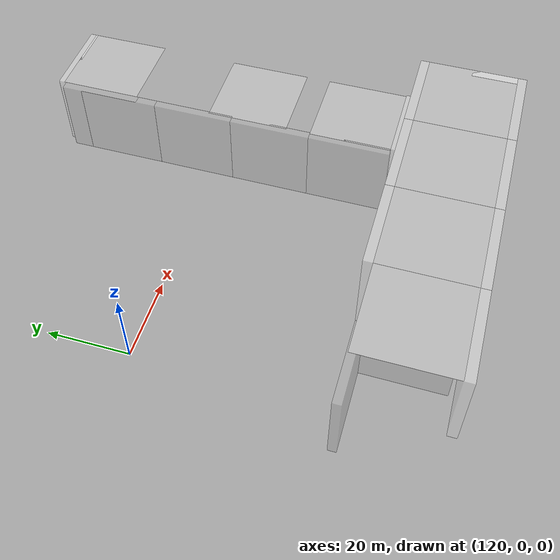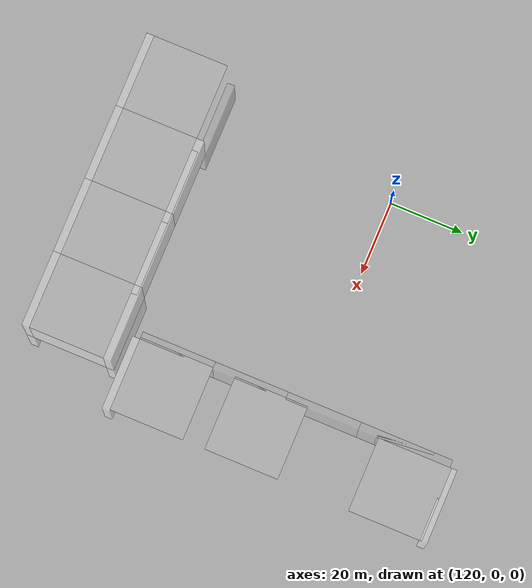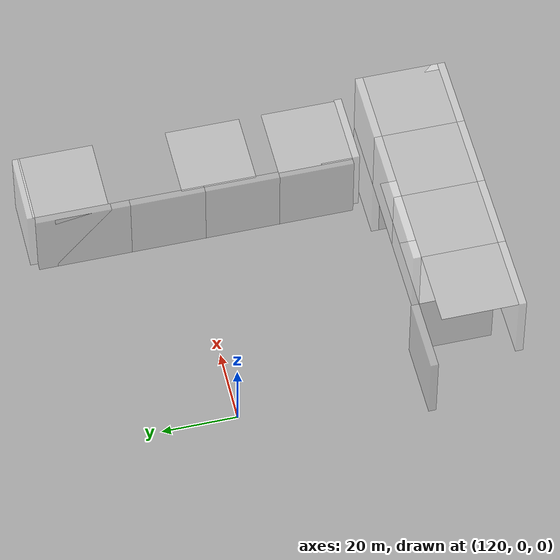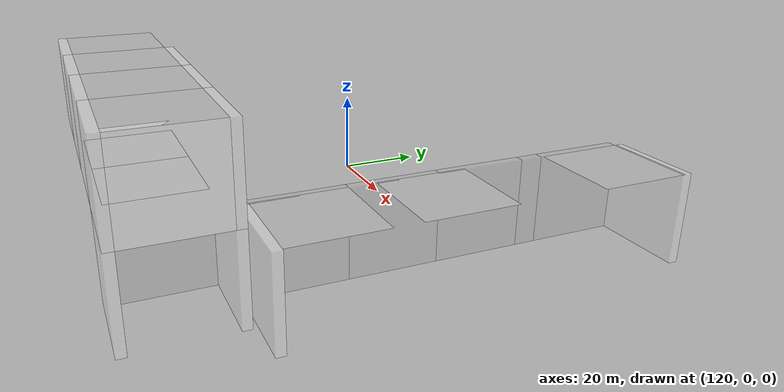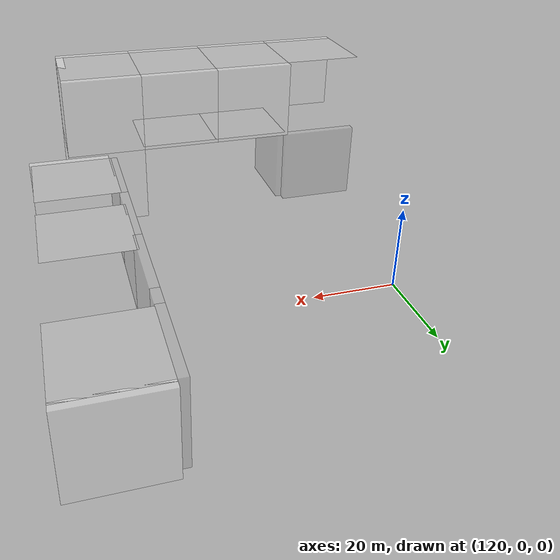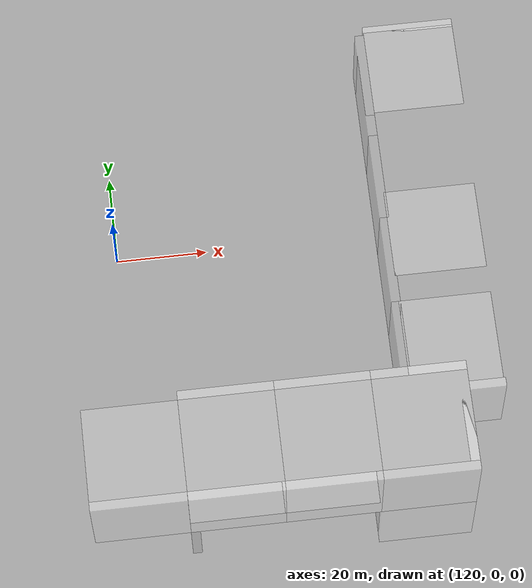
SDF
<sdf version="1.7">
 <model name="race2">
  <link name="link_clone_0_clone_4_clone">
   <pose>131 -60 10 -1.5708 4e-06 1.5708</pose>
   <visual name="visual">
    <transparency>0.6</transparency>
    <geometry><box><size>20 20 2</size></box></geometry>
    <material>
     <script>
      <uri>model://new_wall/materials/scripts</uri>
      <uri>model://new_wall/materials/textures/</uri>
      <name>NewWall/Image</name>
     </script>
     <shader type="pixel"/>
    </material>
   </visual>
   <collision name="collision">
    <geometry><box><size>20 20 2</size></box></geometry>
    <surface>
     <friction>
      <ode><mu>1</mu><mu2>1</mu2><fdir1>0 0 0</fdir1><slip1>0</slip1><slip2>0</slip2></ode>
      <torsional>
       <coefficient>1</coefficient>
       <patch_radius>0</patch_radius>
       <surface_radius>0</surface_radius>
       <use_patch_radius>1</use_patch_radius>
       <ode><slip>0</slip></ode>
      </torsional>
     </friction>
     <bounce><restitution_coefficient>0</restitution_coefficient><threshold>1e+06</threshold></bounce>
     <contact>
      <collide_without_contact>0</collide_without_contact>
      <collide_without_contact_bitmask>1</collide_without_contact_bitmask>
      <collide_bitmask>1</collide_bitmask>
      <ode>
       <soft_cfm>0</soft_cfm>
       <soft_erp>0.2</soft_erp>
       <kp>1e+13</kp>
       <kd>1</kd>
       <max_vel>0.01</max_vel>
       <min_depth>0</min_depth>
      </ode>
      <bullet>
       <split_impulse>1</split_impulse>
       <split_impulse_penetration_threshold>-0.01</split_impulse_penetration_threshold>
       <soft_cfm>0</soft_cfm>
       <soft_erp>0.2</soft_erp>
       <kp>1e+13</kp>
       <kd>1</kd>
      </bullet>
     </contact>
    </surface>
   </collision>
  </link>
  <link name="link_clone_0_clone_4_clone_clone">
   <pose>171 -60 10 -1.5708 4e-06 1.5708</pose>
   <visual name="visual">
    <transparency>0.6</transparency>
    <geometry><box><size>20 20 2</size></box></geometry>
    <material>
     <script>
      <uri>model://new_wall/materials/scripts</uri>
      <uri>model://new_wall/materials/textures/</uri>
      <name>NewWall/Image</name>
     </script>
     <shader type="pixel"/>
    </material>
   </visual>
   <collision name="collision">
    <geometry><box><size>20 20 2</size></box></geometry>
    <surface>
     <friction>
      <ode><mu>1</mu><mu2>1</mu2><fdir1>0 0 0</fdir1><slip1>0</slip1><slip2>0</slip2></ode>
      <torsional>
       <coefficient>1</coefficient>
       <patch_radius>0</patch_radius>
       <surface_radius>0</surface_radius>
       <use_patch_radius>1</use_patch_radius>
       <ode><slip>0</slip></ode>
      </torsional>
     </friction>
     <bounce><restitution_coefficient>0</restitution_coefficient><threshold>1e+06</threshold></bounce>
     <contact>
      <collide_without_contact>0</collide_without_contact>
      <collide_without_contact_bitmask>1</collide_without_contact_bitmask>
      <collide_bitmask>1</collide_bitmask>
      <ode>
       <soft_cfm>0</soft_cfm>
       <soft_erp>0.2</soft_erp>
       <kp>1e+13</kp>
       <kd>1</kd>
       <max_vel>0.01</max_vel>
       <min_depth>0</min_depth>
      </ode>
      <bullet>
       <split_impulse>1</split_impulse>
       <split_impulse_penetration_threshold>-0.01</split_impulse_penetration_threshold>
       <soft_cfm>0</soft_cfm>
       <soft_erp>0.2</soft_erp>
       <kp>1e+13</kp>
       <kd>1</kd>
      </bullet>
     </contact>
    </surface>
   </collision>
  </link>
  <link name="link_clone_0_clone_4_clone_clone_0_clone_clone_2">
   <pose>179 -35 10 -1.5708 4e-06 1.5708</pose>
   <visual name="visual">
    <transparency>0.6</transparency>
    <geometry><box><size>20 20 2</size></box></geometry>
    <material>
     <script>
      <uri>model://new_wall/materials/scripts</uri>
      <uri>model://new_wall/materials/textures/</uri>
      <name>NewWall/Image</name>
     </script>
     <shader type="pixel"/>
    </material>
   </visual>
   <collision name="collision">
    <geometry><box><size>20 20 2</size></box></geometry>
    <surface>
     <friction>
      <ode><mu>1</mu><mu2>1</mu2><fdir1>0 0 0</fdir1><slip1>0</slip1><slip2>0</slip2></ode>
      <torsional>
       <coefficient>1</coefficient>
       <patch_radius>0</patch_radius>
       <surface_radius>0</surface_radius>
       <use_patch_radius>1</use_patch_radius>
       <ode><slip>0</slip></ode>
      </torsional>
     </friction>
     <bounce><restitution_coefficient>0</restitution_coefficient><threshold>1e+06</threshold></bounce>
     <contact>
      <collide_without_contact>0</collide_without_contact>
      <collide_without_contact_bitmask>1</collide_without_contact_bitmask>
      <collide_bitmask>1</collide_bitmask>
      <ode>
       <soft_cfm>0</soft_cfm>
       <soft_erp>0.2</soft_erp>
       <kp>1e+13</kp>
       <kd>1</kd>
       <max_vel>0.01</max_vel>
       <min_depth>0</min_depth>
      </ode>
      <bullet>
       <split_impulse>1</split_impulse>
       <split_impulse_penetration_threshold>-0.01</split_impulse_penetration_threshold>
       <soft_cfm>0</soft_cfm>
       <soft_erp>0.2</soft_erp>
       <kp>1e+13</kp>
       <kd>1</kd>
      </bullet>
     </contact>
    </surface>
   </collision>
  </link>
  <link name="link_clone_0_clone_4_clone_clone_0_clone_clone_3">
   <pose>179 -15 10 -1.5708 4e-06 1.5708</pose>
   <visual name="visual">
    <transparency>0.6</transparency>
    <geometry><box><size>20 20 2</size></box></geometry>
    <material>
     <script>
      <uri>model://new_wall/materials/scripts</uri>
      <uri>model://new_wall/materials/textures/</uri>
      <name>NewWall/Image</name>
     </script>
     <shader type="pixel"/>
    </material>
   </visual>
   <collision name="collision">
    <geometry><box><size>20 20 2</size></box></geometry>
    <surface>
     <friction>
      <ode><mu>1</mu><mu2>1</mu2><fdir1>0 0 0</fdir1><slip1>0</slip1><slip2>0</slip2></ode>
      <torsional>
       <coefficient>1</coefficient>
       <patch_radius>0</patch_radius>
       <surface_radius>0</surface_radius>
       <use_patch_radius>1</use_patch_radius>
       <ode><slip>0</slip></ode>
      </torsional>
     </friction>
     <bounce><restitution_coefficient>0</restitution_coefficient><threshold>1e+06</threshold></bounce>
     <contact>
      <collide_without_contact>0</collide_without_contact>
      <collide_without_contact_bitmask>1</collide_without_contact_bitmask>
      <collide_bitmask>1</collide_bitmask>
      <ode>
       <soft_cfm>0</soft_cfm>
       <soft_erp>0.2</soft_erp>
       <kp>1e+13</kp>
       <kd>1</kd>
       <max_vel>0.01</max_vel>
       <min_depth>0</min_depth>
      </ode>
      <bullet>
       <split_impulse>1</split_impulse>
       <split_impulse_penetration_threshold>-0.01</split_impulse_penetration_threshold>
       <soft_cfm>0</soft_cfm>
       <soft_erp>0.2</soft_erp>
       <kp>1e+13</kp>
       <kd>1</kd>
      </bullet>
     </contact>
    </surface>
   </collision>
  </link>
  <link name="link_clone_0_clone_4_clone_clone_0_clone_clone_4">
   <pose>179 5 10 -1.5708 4e-06 1.5708</pose>
   <visual name="visual">
    <transparency>0.6</transparency>
    <geometry><box><size>20 20 2</size></box></geometry>
    <material>
     <script>
      <uri>model://new_wall/materials/scripts</uri>
      <uri>model://new_wall/materials/textures/</uri>
      <name>NewWall/Image</name>
     </script>
     <shader type="pixel"/>
    </material>
   </visual>
   <collision name="collision">
    <geometry><box><size>20 20 2</size></box></geometry>
    <surface>
     <friction>
      <ode><mu>1</mu><mu2>1</mu2><fdir1>0 0 0</fdir1><slip1>0</slip1><slip2>0</slip2></ode>
      <torsional>
       <coefficient>1</coefficient>
       <patch_radius>0</patch_radius>
       <surface_radius>0</surface_radius>
       <use_patch_radius>1</use_patch_radius>
       <ode><slip>0</slip></ode>
      </torsional>
     </friction>
     <bounce><restitution_coefficient>0</restitution_coefficient><threshold>1e+06</threshold></bounce>
     <contact>
      <collide_without_contact>0</collide_without_contact>
      <collide_without_contact_bitmask>1</collide_without_contact_bitmask>
      <collide_bitmask>1</collide_bitmask>
      <ode>
       <soft_cfm>0</soft_cfm>
       <soft_erp>0.2</soft_erp>
       <kp>1e+13</kp>
       <kd>1</kd>
       <max_vel>0.01</max_vel>
       <min_depth>0</min_depth>
      </ode>
      <bullet>
       <split_impulse>1</split_impulse>
       <split_impulse_penetration_threshold>-0.01</split_impulse_penetration_threshold>
       <soft_cfm>0</soft_cfm>
       <soft_erp>0.2</soft_erp>
       <kp>1e+13</kp>
       <kd>1</kd>
      </bullet>
     </contact>
    </surface>
   </collision>
  </link>
  <link name="link_clone_0_clone_4_clone_clone_0_clone_clone_5">
   <pose>179 25 10 -1.5708 4e-06 1.5708</pose>
   <visual name="visual">
    <transparency>0.6</transparency>
    <geometry><box><size>20 20 2</size></box></geometry>
    <material>
     <script>
      <uri>model://new_wall/materials/scripts</uri>
      <uri>model://new_wall/materials/textures/</uri>
      <name>NewWall/Image</name>
     </script>
     <shader type="pixel"/>
    </material>
   </visual>
   <collision name="collision">
    <geometry><box><size>20 20 2</size></box></geometry>
    <surface>
     <friction>
      <ode><mu>1</mu><mu2>1</mu2><fdir1>0 0 0</fdir1><slip1>0</slip1><slip2>0</slip2></ode>
      <torsional>
       <coefficient>1</coefficient>
       <patch_radius>0</patch_radius>
       <surface_radius>0</surface_radius>
       <use_patch_radius>1</use_patch_radius>
       <ode><slip>0</slip></ode>
      </torsional>
     </friction>
     <bounce><restitution_coefficient>0</restitution_coefficient><threshold>1e+06</threshold></bounce>
     <contact>
      <collide_without_contact>0</collide_without_contact>
      <collide_without_contact_bitmask>1</collide_without_contact_bitmask>
      <collide_bitmask>1</collide_bitmask>
      <ode>
       <soft_cfm>0</soft_cfm>
       <soft_erp>0.2</soft_erp>
       <kp>1e+13</kp>
       <kd>1</kd>
       <max_vel>0.01</max_vel>
       <min_depth>0</min_depth>
      </ode>
      <bullet>
       <split_impulse>1</split_impulse>
       <split_impulse_penetration_threshold>-0.01</split_impulse_penetration_threshold>
       <soft_cfm>0</soft_cfm>
       <soft_erp>0.2</soft_erp>
       <kp>1e+13</kp>
       <kd>1</kd>
      </bullet>
     </contact>
    </surface>
   </collision>
  </link>
  <link name="link_clone_0_clone_4_clone_clone_0_clone_clone_5_clone">
   <pose>179 30 10 -1.5708 4e-06 1.5708</pose>
   <visual name="visual">
    <transparency>0.6</transparency>
    <geometry><box><size>20 20 2</size></box></geometry>
    <material>
     <script>
      <uri>model://new_wall/materials/scripts</uri>
      <uri>model://new_wall/materials/textures/</uri>
      <name>NewWall/Image</name>
     </script>
     <shader type="pixel"/>
    </material>
   </visual>
   <collision name="collision">
    <geometry><box><size>20 20 2</size></box></geometry>
    <surface>
     <friction>
      <ode><mu>1</mu><mu2>1</mu2><fdir1>0 0 0</fdir1><slip1>0</slip1><slip2>0</slip2></ode>
      <torsional>
       <coefficient>1</coefficient>
       <patch_radius>0</patch_radius>
       <surface_radius>0</surface_radius>
       <use_patch_radius>1</use_patch_radius>
       <ode><slip>0</slip></ode>
      </torsional>
     </friction>
     <bounce><restitution_coefficient>0</restitution_coefficient><threshold>1e+06</threshold></bounce>
     <contact>
      <collide_without_contact>0</collide_without_contact>
      <collide_without_contact_bitmask>1</collide_without_contact_bitmask>
      <collide_bitmask>1</collide_bitmask>
      <ode>
       <soft_cfm>0</soft_cfm>
       <soft_erp>0.2</soft_erp>
       <kp>1e+13</kp>
       <kd>1</kd>
       <max_vel>0.01</max_vel>
       <min_depth>0</min_depth>
      </ode>
      <bullet>
       <split_impulse>1</split_impulse>
       <split_impulse_penetration_threshold>-0.01</split_impulse_penetration_threshold>
       <soft_cfm>0</soft_cfm>
       <soft_erp>0.2</soft_erp>
       <kp>1e+13</kp>
       <kd>1</kd>
      </bullet>
     </contact>
    </surface>
   </collision>
  </link>
  <link name="link_clone_2_clone_3_clone">
   <pose>120.433 -49 10 -1.5708 0 0</pose>
   <inertial>
    <mass>1</mass>
    <inertia><ixx>1</ixx><ixy>0</ixy><ixz>0</ixz><iyy>1</iyy><iyz>0</iyz><izz>1</izz></inertia>
   </inertial>
   <visual name="visual">
    <transparency>0.6</transparency>
    <geometry><box><size>20 20 2</size></box></geometry>
    <material>
     <script>
      <uri>model://new_wall/materials/scripts</uri>
      <uri>model://new_wall/materials/textures/</uri>
      <name>NewWall/Image</name>
     </script>
     <shader type="pixel"><normal_map>__default__</normal_map></shader>
    </material>
   </visual>
   <collision name="collision">
    <geometry><box><size>20 20 2</size></box></geometry>
    <surface>
     <friction>
      <ode><mu>1</mu><mu2>1</mu2><fdir1>0 0 0</fdir1><slip1>0</slip1><slip2>0</slip2></ode>
      <torsional>
       <coefficient>1</coefficient>
       <patch_radius>0</patch_radius>
       <surface_radius>0</surface_radius>
       <use_patch_radius>1</use_patch_radius>
       <ode><slip>0</slip></ode>
      </torsional>
     </friction>
     <bounce><restitution_coefficient>0</restitution_coefficient><threshold>1e+06</threshold></bounce>
     <contact>
      <collide_without_contact>0</collide_without_contact>
      <collide_without_contact_bitmask>1</collide_without_contact_bitmask>
      <collide_bitmask>1</collide_bitmask>
      <ode>
       <soft_cfm>0</soft_cfm>
       <soft_erp>0.2</soft_erp>
       <kp>1e+13</kp>
       <kd>1</kd>
       <max_vel>0.01</max_vel>
       <min_depth>0</min_depth>
      </ode>
      <bullet>
       <split_impulse>1</split_impulse>
       <split_impulse_penetration_threshold>-0.01</split_impulse_penetration_threshold>
       <soft_cfm>0</soft_cfm>
       <soft_erp>0.2</soft_erp>
       <kp>1e+13</kp>
       <kd>1</kd>
      </bullet>
     </contact>
    </surface>
   </collision>
  </link>
  <link name="link_clone_2_clone_3_clone_0">
   <pose>120 -71 30 -1.5708 0 0</pose>
   <inertial>
    <mass>1</mass>
    <inertia><ixx>1</ixx><ixy>0</ixy><ixz>0</ixz><iyy>1</iyy><iyz>0</iyz><izz>1</izz></inertia>
   </inertial>
   <visual name="visual">
    <transparency>0.6</transparency>
    <geometry><box><size>20 20 2</size></box></geometry>
    <material>
     <script>
      <uri>model://new_wall/materials/scripts</uri>
      <uri>model://new_wall/materials/textures/</uri>
      <name>NewWall/Image</name>
     </script>
     <shader type="pixel"><normal_map>__default__</normal_map></shader>
     <ambient>1 1 1 1</ambient>
     <diffuse>1 1 1 1</diffuse>
     <specular>0.03 0.03 0.03 1</specular>
     <emissive>0 0 0 1</emissive>
    </material>
   </visual>
   <collision name="collision">
    <geometry><box><size>20 20 2</size></box></geometry>
    <surface>
     <friction>
      <ode><mu>1</mu><mu2>1</mu2><fdir1>0 0 0</fdir1><slip1>0</slip1><slip2>0</slip2></ode>
      <torsional>
       <coefficient>1</coefficient>
       <patch_radius>0</patch_radius>
       <surface_radius>0</surface_radius>
       <use_patch_radius>1</use_patch_radius>
       <ode><slip>0</slip></ode>
      </torsional>
     </friction>
     <bounce><restitution_coefficient>0</restitution_coefficient><threshold>1e+06</threshold></bounce>
     <contact>
      <collide_without_contact>0</collide_without_contact>
      <collide_without_contact_bitmask>1</collide_without_contact_bitmask>
      <collide_bitmask>1</collide_bitmask>
      <ode>
       <soft_cfm>0</soft_cfm>
       <soft_erp>0.2</soft_erp>
       <kp>1e+13</kp>
       <kd>1</kd>
       <max_vel>0.01</max_vel>
       <min_depth>0</min_depth>
      </ode>
      <bullet>
       <split_impulse>1</split_impulse>
       <split_impulse_penetration_threshold>-0.01</split_impulse_penetration_threshold>
       <soft_cfm>0</soft_cfm>
       <soft_erp>0.2</soft_erp>
       <kp>1e+13</kp>
       <kd>1</kd>
      </bullet>
     </contact>
    </surface>
   </collision>
  </link>
  <link name="link_clone_2_clone_3_clone_0_clone_clone">
   <pose>189 -60 30 -1.5708 -4e-06 -1.5708</pose>
   <inertial>
    <mass>1</mass>
    <inertia><ixx>1</ixx><ixy>0</ixy><ixz>0</ixz><iyy>1</iyy><iyz>0</iyz><izz>1</izz></inertia>
   </inertial>
   <visual name="visual">
    <transparency>0.6</transparency>
    <geometry><box><size>20 20 2</size></box></geometry>
    <material>
     <script>
      <uri>model://new_wall/materials/scripts</uri>
      <uri>model://new_wall/materials/textures/</uri>
      <name>NewWall/Image</name>
     </script>
     <shader type="pixel"><normal_map>__default__</normal_map></shader>
     <ambient>1 1 1 1</ambient>
     <diffuse>1 1 1 1</diffuse>
     <specular>0.03 0.03 0.03 1</specular>
     <emissive>0 0 0 1</emissive>
    </material>
   </visual>
   <collision name="collision">
    <geometry><box><size>20 20 2</size></box></geometry>
    <surface>
     <friction>
      <ode><mu>1</mu><mu2>1</mu2><fdir1>0 0 0</fdir1><slip1>0</slip1><slip2>0</slip2></ode>
      <torsional>
       <coefficient>1</coefficient>
       <patch_radius>0</patch_radius>
       <surface_radius>0</surface_radius>
       <use_patch_radius>1</use_patch_radius>
       <ode><slip>0</slip></ode>
      </torsional>
     </friction>
     <bounce><restitution_coefficient>0</restitution_coefficient><threshold>1e+06</threshold></bounce>
     <contact>
      <collide_without_contact>0</collide_without_contact>
      <collide_without_contact_bitmask>1</collide_without_contact_bitmask>
      <collide_bitmask>1</collide_bitmask>
      <ode>
       <soft_cfm>0</soft_cfm>
       <soft_erp>0.2</soft_erp>
       <kp>1e+13</kp>
       <kd>1</kd>
       <max_vel>0.01</max_vel>
       <min_depth>0</min_depth>
      </ode>
      <bullet>
       <split_impulse>1</split_impulse>
       <split_impulse_penetration_threshold>-0.01</split_impulse_penetration_threshold>
       <soft_cfm>0</soft_cfm>
       <soft_erp>0.2</soft_erp>
       <kp>1e+13</kp>
       <kd>1</kd>
      </bullet>
     </contact>
    </surface>
   </collision>
  </link>
  <link name="link_clone_2_clone_3_clone_1">
   <pose>140 -49 30 -1.5708 0 0</pose>
   <inertial>
    <mass>1</mass>
    <inertia><ixx>1</ixx><ixy>0</ixy><ixz>0</ixz><iyy>1</iyy><iyz>0</iyz><izz>1</izz></inertia>
   </inertial>
   <visual name="visual">
    <transparency>0.6</transparency>
    <geometry><box><size>20 20 2</size></box></geometry>
    <material>
     <script>
      <uri>model://new_wall/materials/scripts</uri>
      <uri>model://new_wall/materials/textures/</uri>
      <name>NewWall/Image</name>
     </script>
     <shader type="pixel"><normal_map>__default__</normal_map></shader>
     <ambient>1 1 1 1</ambient>
     <diffuse>1 1 1 1</diffuse>
     <specular>0.03 0.03 0.03 1</specular>
     <emissive>0 0 0 1</emissive>
    </material>
   </visual>
   <collision name="collision">
    <geometry><box><size>20 20 2</size></box></geometry>
    <surface>
     <friction>
      <ode><mu>1</mu><mu2>1</mu2><fdir1>0 0 0</fdir1><slip1>0</slip1><slip2>0</slip2></ode>
      <torsional>
       <coefficient>1</coefficient>
       <patch_radius>0</patch_radius>
       <surface_radius>0</surface_radius>
       <use_patch_radius>1</use_patch_radius>
       <ode><slip>0</slip></ode>
      </torsional>
     </friction>
     <bounce><restitution_coefficient>0</restitution_coefficient><threshold>1e+06</threshold></bounce>
     <contact>
      <collide_without_contact>0</collide_without_contact>
      <collide_without_contact_bitmask>1</collide_without_contact_bitmask>
      <collide_bitmask>1</collide_bitmask>
      <ode>
       <soft_cfm>0</soft_cfm>
       <soft_erp>0.2</soft_erp>
       <kp>1e+13</kp>
       <kd>1</kd>
       <max_vel>0.01</max_vel>
       <min_depth>0</min_depth>
      </ode>
      <bullet>
       <split_impulse>1</split_impulse>
       <split_impulse_penetration_threshold>-0.01</split_impulse_penetration_threshold>
       <soft_cfm>0</soft_cfm>
       <soft_erp>0.2</soft_erp>
       <kp>1e+13</kp>
       <kd>1</kd>
      </bullet>
     </contact>
    </surface>
   </collision>
  </link>
  <link name="link_clone_2_clone_3_clone_2">
   <pose>140 -71 30 -1.5708 0 0</pose>
   <inertial>
    <mass>1</mass>
    <inertia><ixx>1</ixx><ixy>0</ixy><ixz>0</ixz><iyy>1</iyy><iyz>0</iyz><izz>1</izz></inertia>
   </inertial>
   <visual name="visual">
    <transparency>0.6</transparency>
    <geometry><box><size>20 20 2</size></box></geometry>
    <material>
     <script>
      <uri>model://new_wall/materials/scripts</uri>
      <uri>model://new_wall/materials/textures/</uri>
      <name>NewWall/Image</name>
     </script>
     <shader type="pixel"><normal_map>__default__</normal_map></shader>
     <ambient>1 1 1 1</ambient>
     <diffuse>1 1 1 1</diffuse>
     <specular>0.03 0.03 0.03 1</specular>
     <emissive>0 0 0 1</emissive>
    </material>
   </visual>
   <collision name="collision">
    <geometry><box><size>20 20 2</size></box></geometry>
    <surface>
     <friction>
      <ode><mu>1</mu><mu2>1</mu2><fdir1>0 0 0</fdir1><slip1>0</slip1><slip2>0</slip2></ode>
      <torsional>
       <coefficient>1</coefficient>
       <patch_radius>0</patch_radius>
       <surface_radius>0</surface_radius>
       <use_patch_radius>1</use_patch_radius>
       <ode><slip>0</slip></ode>
      </torsional>
     </friction>
     <bounce><restitution_coefficient>0</restitution_coefficient><threshold>1e+06</threshold></bounce>
     <contact>
      <collide_without_contact>0</collide_without_contact>
      <collide_without_contact_bitmask>1</collide_without_contact_bitmask>
      <collide_bitmask>1</collide_bitmask>
      <ode>
       <soft_cfm>0</soft_cfm>
       <soft_erp>0.2</soft_erp>
       <kp>1e+13</kp>
       <kd>1</kd>
       <max_vel>0.01</max_vel>
       <min_depth>0</min_depth>
      </ode>
      <bullet>
       <split_impulse>1</split_impulse>
       <split_impulse_penetration_threshold>-0.01</split_impulse_penetration_threshold>
       <soft_cfm>0</soft_cfm>
       <soft_erp>0.2</soft_erp>
       <kp>1e+13</kp>
       <kd>1</kd>
      </bullet>
     </contact>
    </surface>
   </collision>
  </link>
  <link name="link_clone_2_clone_3_clone_3">
   <pose>160 -49 30 -1.5708 0 0</pose>
   <inertial>
    <mass>1</mass>
    <inertia><ixx>1</ixx><ixy>0</ixy><ixz>0</ixz><iyy>1</iyy><iyz>0</iyz><izz>1</izz></inertia>
   </inertial>
   <visual name="visual">
    <transparency>0.6</transparency>
    <geometry><box><size>20 20 2</size></box></geometry>
    <material>
     <script>
      <uri>model://new_wall/materials/scripts</uri>
      <uri>model://new_wall/materials/textures/</uri>
      <name>NewWall/Image</name>
     </script>
     <shader type="pixel"><normal_map>__default__</normal_map></shader>
     <ambient>1 1 1 1</ambient>
     <diffuse>1 1 1 1</diffuse>
     <specular>0.03 0.03 0.03 1</specular>
     <emissive>0 0 0 1</emissive>
    </material>
   </visual>
   <collision name="collision">
    <geometry><box><size>20 20 2</size></box></geometry>
    <surface>
     <friction>
      <ode><mu>1</mu><mu2>1</mu2><fdir1>0 0 0</fdir1><slip1>0</slip1><slip2>0</slip2></ode>
      <torsional>
       <coefficient>1</coefficient>
       <patch_radius>0</patch_radius>
       <surface_radius>0</surface_radius>
       <use_patch_radius>1</use_patch_radius>
       <ode><slip>0</slip></ode>
      </torsional>
     </friction>
     <bounce><restitution_coefficient>0</restitution_coefficient><threshold>1e+06</threshold></bounce>
     <contact>
      <collide_without_contact>0</collide_without_contact>
      <collide_without_contact_bitmask>1</collide_without_contact_bitmask>
      <collide_bitmask>1</collide_bitmask>
      <ode>
       <soft_cfm>0</soft_cfm>
       <soft_erp>0.2</soft_erp>
       <kp>1e+13</kp>
       <kd>1</kd>
       <max_vel>0.01</max_vel>
       <min_depth>0</min_depth>
      </ode>
      <bullet>
       <split_impulse>1</split_impulse>
       <split_impulse_penetration_threshold>-0.01</split_impulse_penetration_threshold>
       <soft_cfm>0</soft_cfm>
       <soft_erp>0.2</soft_erp>
       <kp>1e+13</kp>
       <kd>1</kd>
      </bullet>
     </contact>
    </surface>
   </collision>
  </link>
  <link name="link_clone_2_clone_3_clone_4">
   <pose>160 -71 30 -1.5708 0 0</pose>
   <inertial>
    <mass>1</mass>
    <inertia><ixx>1</ixx><ixy>0</ixy><ixz>0</ixz><iyy>1</iyy><iyz>0</iyz><izz>1</izz></inertia>
   </inertial>
   <visual name="visual">
    <transparency>0.6</transparency>
    <geometry><box><size>20 20 2</size></box></geometry>
    <material>
     <script>
      <uri>model://new_wall/materials/scripts</uri>
      <uri>model://new_wall/materials/textures/</uri>
      <name>NewWall/Image</name>
     </script>
     <shader type="pixel"><normal_map>__default__</normal_map></shader>
     <ambient>1 1 1 1</ambient>
     <diffuse>1 1 1 1</diffuse>
     <specular>0.03 0.03 0.03 1</specular>
     <emissive>0 0 0 1</emissive>
    </material>
   </visual>
   <collision name="collision">
    <geometry><box><size>20 20 2</size></box></geometry>
    <surface>
     <friction>
      <ode><mu>1</mu><mu2>1</mu2><fdir1>0 0 0</fdir1><slip1>0</slip1><slip2>0</slip2></ode>
      <torsional>
       <coefficient>1</coefficient>
       <patch_radius>0</patch_radius>
       <surface_radius>0</surface_radius>
       <use_patch_radius>1</use_patch_radius>
       <ode><slip>0</slip></ode>
      </torsional>
     </friction>
     <bounce><restitution_coefficient>0</restitution_coefficient><threshold>1e+06</threshold></bounce>
     <contact>
      <collide_without_contact>0</collide_without_contact>
      <collide_without_contact_bitmask>1</collide_without_contact_bitmask>
      <collide_bitmask>1</collide_bitmask>
      <ode>
       <soft_cfm>0</soft_cfm>
       <soft_erp>0.2</soft_erp>
       <kp>1e+13</kp>
       <kd>1</kd>
       <max_vel>0.01</max_vel>
       <min_depth>0</min_depth>
      </ode>
      <bullet>
       <split_impulse>1</split_impulse>
       <split_impulse_penetration_threshold>-0.01</split_impulse_penetration_threshold>
       <soft_cfm>0</soft_cfm>
       <soft_erp>0.2</soft_erp>
       <kp>1e+13</kp>
       <kd>1</kd>
      </bullet>
     </contact>
    </surface>
   </collision>
  </link>
  <link name="link_clone_2_clone_3_clone_5">
   <pose>180 -49 30 -1.5708 0 0</pose>
   <inertial>
    <mass>1</mass>
    <inertia><ixx>1</ixx><ixy>0</ixy><ixz>0</ixz><iyy>1</iyy><iyz>0</iyz><izz>1</izz></inertia>
   </inertial>
   <visual name="visual">
    <transparency>0.6</transparency>
    <geometry><box><size>20 20 2</size></box></geometry>
    <material>
     <script>
      <uri>model://new_wall/materials/scripts</uri>
      <uri>model://new_wall/materials/textures/</uri>
      <name>NewWall/Image</name>
     </script>
     <shader type="pixel"><normal_map>__default__</normal_map></shader>
     <ambient>1 1 1 1</ambient>
     <diffuse>1 1 1 1</diffuse>
     <specular>0.03 0.03 0.03 1</specular>
     <emissive>0 0 0 1</emissive>
    </material>
   </visual>
   <collision name="collision">
    <geometry><box><size>20 20 2</size></box></geometry>
    <surface>
     <friction>
      <ode><mu>1</mu><mu2>1</mu2><fdir1>0 0 0</fdir1><slip1>0</slip1><slip2>0</slip2></ode>
      <torsional>
       <coefficient>1</coefficient>
       <patch_radius>0</patch_radius>
       <surface_radius>0</surface_radius>
       <use_patch_radius>1</use_patch_radius>
       <ode><slip>0</slip></ode>
      </torsional>
     </friction>
     <bounce><restitution_coefficient>0</restitution_coefficient><threshold>1e+06</threshold></bounce>
     <contact>
      <collide_without_contact>0</collide_without_contact>
      <collide_without_contact_bitmask>1</collide_without_contact_bitmask>
      <collide_bitmask>1</collide_bitmask>
      <ode>
       <soft_cfm>0</soft_cfm>
       <soft_erp>0.2</soft_erp>
       <kp>1e+13</kp>
       <kd>1</kd>
       <max_vel>0.01</max_vel>
       <min_depth>0</min_depth>
      </ode>
      <bullet>
       <split_impulse>1</split_impulse>
       <split_impulse_penetration_threshold>-0.01</split_impulse_penetration_threshold>
       <soft_cfm>0</soft_cfm>
       <soft_erp>0.2</soft_erp>
       <kp>1e+13</kp>
       <kd>1</kd>
      </bullet>
     </contact>
    </surface>
   </collision>
  </link>
  <link name="link_clone_2_clone_3_clone_6">
   <pose>180 -71 30 -1.5708 0 0</pose>
   <inertial>
    <mass>1</mass>
    <inertia><ixx>1</ixx><ixy>0</ixy><ixz>0</ixz><iyy>1</iyy><iyz>0</iyz><izz>1</izz></inertia>
   </inertial>
   <visual name="visual">
    <transparency>0.6</transparency>
    <geometry><box><size>20 20 2</size></box></geometry>
    <material>
     <script>
      <uri>model://new_wall/materials/scripts</uri>
      <uri>model://new_wall/materials/textures/</uri>
      <name>NewWall/Image</name>
     </script>
     <shader type="pixel"><normal_map>__default__</normal_map></shader>
     <ambient>1 1 1 1</ambient>
     <diffuse>1 1 1 1</diffuse>
     <specular>0.03 0.03 0.03 1</specular>
     <emissive>0 0 0 1</emissive>
    </material>
   </visual>
   <collision name="collision">
    <geometry><box><size>20 20 2</size></box></geometry>
    <surface>
     <friction>
      <ode><mu>1</mu><mu2>1</mu2><fdir1>0 0 0</fdir1><slip1>0</slip1><slip2>0</slip2></ode>
      <torsional>
       <coefficient>1</coefficient>
       <patch_radius>0</patch_radius>
       <surface_radius>0</surface_radius>
       <use_patch_radius>1</use_patch_radius>
       <ode><slip>0</slip></ode>
      </torsional>
     </friction>
     <bounce><restitution_coefficient>0</restitution_coefficient><threshold>1e+06</threshold></bounce>
     <contact>
      <collide_without_contact>0</collide_without_contact>
      <collide_without_contact_bitmask>1</collide_without_contact_bitmask>
      <collide_bitmask>1</collide_bitmask>
      <ode>
       <soft_cfm>0</soft_cfm>
       <soft_erp>0.2</soft_erp>
       <kp>1e+13</kp>
       <kd>1</kd>
       <max_vel>0.01</max_vel>
       <min_depth>0</min_depth>
      </ode>
      <bullet>
       <split_impulse>1</split_impulse>
       <split_impulse_penetration_threshold>-0.01</split_impulse_penetration_threshold>
       <soft_cfm>0</soft_cfm>
       <soft_erp>0.2</soft_erp>
       <kp>1e+13</kp>
       <kd>1</kd>
      </bullet>
     </contact>
    </surface>
   </collision>
  </link>
  <link name="link_clone_2_clone_3_clone_6_clone">
   <pose>180 -71 10 -1.5708 0 0</pose>
   <inertial>
    <mass>1</mass>
    <inertia><ixx>1</ixx><ixy>0</ixy><ixz>0</ixz><iyy>1</iyy><iyz>0</iyz><izz>1</izz></inertia>
   </inertial>
   <visual name="visual">
    <transparency>0.6</transparency>
    <geometry><box><size>20 20 2</size></box></geometry>
    <material>
     <script>
      <uri>model://new_wall/materials/scripts</uri>
      <uri>model://new_wall/materials/textures/</uri>
      <name>NewWall/Image</name>
     </script>
     <shader type="pixel"><normal_map>__default__</normal_map></shader>
     <ambient>1 1 1 1</ambient>
     <diffuse>1 1 1 1</diffuse>
     <specular>0.03 0.03 0.03 1</specular>
     <emissive>0 0 0 1</emissive>
    </material>
   </visual>
   <collision name="collision">
    <geometry><box><size>20 20 2</size></box></geometry>
    <surface>
     <friction>
      <ode><mu>1</mu><mu2>1</mu2><fdir1>0 0 0</fdir1><slip1>0</slip1><slip2>0</slip2></ode>
      <torsional>
       <coefficient>1</coefficient>
       <patch_radius>0</patch_radius>
       <surface_radius>0</surface_radius>
       <use_patch_radius>1</use_patch_radius>
       <ode><slip>0</slip></ode>
      </torsional>
     </friction>
     <bounce><restitution_coefficient>0</restitution_coefficient><threshold>1e+06</threshold></bounce>
     <contact>
      <collide_without_contact>0</collide_without_contact>
      <collide_without_contact_bitmask>1</collide_without_contact_bitmask>
      <collide_bitmask>1</collide_bitmask>
      <ode>
       <soft_cfm>0</soft_cfm>
       <soft_erp>0.2</soft_erp>
       <kp>1e+13</kp>
       <kd>1</kd>
       <max_vel>0.01</max_vel>
       <min_depth>0</min_depth>
      </ode>
      <bullet>
       <split_impulse>1</split_impulse>
       <split_impulse_penetration_threshold>-0.01</split_impulse_penetration_threshold>
       <soft_cfm>0</soft_cfm>
       <soft_erp>0.2</soft_erp>
       <kp>1e+13</kp>
       <kd>1</kd>
      </bullet>
     </contact>
    </surface>
   </collision>
  </link>
  <link name="link_clone_2_clone_3_clone_6_clone_clone">
   <pose>180 -49 10 -1.5708 0 0</pose>
   <inertial>
    <mass>1</mass>
    <inertia><ixx>1</ixx><ixy>0</ixy><ixz>0</ixz><iyy>1</iyy><iyz>0</iyz><izz>1</izz></inertia>
   </inertial>
   <visual name="visual">
    <transparency>0.6</transparency>
    <geometry><box><size>20 20 2</size></box></geometry>
    <material>
     <script>
      <uri>model://new_wall/materials/scripts</uri>
      <uri>model://new_wall/materials/textures/</uri>
      <name>NewWall/Image</name>
     </script>
     <shader type="pixel"><normal_map>__default__</normal_map></shader>
     <ambient>1 1 1 1</ambient>
     <diffuse>1 1 1 1</diffuse>
     <specular>0.03 0.03 0.03 1</specular>
     <emissive>0 0 0 1</emissive>
    </material>
   </visual>
   <collision name="collision">
    <geometry><box><size>20 20 2</size></box></geometry>
    <surface>
     <friction>
      <ode><mu>1</mu><mu2>1</mu2><fdir1>0 0 0</fdir1><slip1>0</slip1><slip2>0</slip2></ode>
      <torsional>
       <coefficient>1</coefficient>
       <patch_radius>0</patch_radius>
       <surface_radius>0</surface_radius>
       <use_patch_radius>1</use_patch_radius>
       <ode><slip>0</slip></ode>
      </torsional>
     </friction>
     <bounce><restitution_coefficient>0</restitution_coefficient><threshold>1e+06</threshold></bounce>
     <contact>
      <collide_without_contact>0</collide_without_contact>
      <collide_without_contact_bitmask>1</collide_without_contact_bitmask>
      <collide_bitmask>1</collide_bitmask>
      <ode>
       <soft_cfm>0</soft_cfm>
       <soft_erp>0.2</soft_erp>
       <kp>1e+13</kp>
       <kd>1</kd>
       <max_vel>0.01</max_vel>
       <min_depth>0</min_depth>
      </ode>
      <bullet>
       <split_impulse>1</split_impulse>
       <split_impulse_penetration_threshold>-0.01</split_impulse_penetration_threshold>
       <soft_cfm>0</soft_cfm>
       <soft_erp>0.2</soft_erp>
       <kp>1e+13</kp>
       <kd>1</kd>
      </bullet>
     </contact>
    </surface>
   </collision>
  </link>
  <link name="link_clone_2_clone_3_clone_6_clone_clone_clone_1_clone_0">
   <pose>190 -46 10 -1.5708 0 0</pose>
   <inertial>
    <mass>1</mass>
    <inertia><ixx>1</ixx><ixy>0</ixy><ixz>0</ixz><iyy>1</iyy><iyz>0</iyz><izz>1</izz></inertia>
   </inertial>
   <visual name="visual">
    <transparency>0.6</transparency>
    <geometry><box><size>20 20 2</size></box></geometry>
    <material>
     <script>
      <uri>model://new_wall/materials/scripts</uri>
      <uri>model://new_wall/materials/textures/</uri>
      <name>NewWall/Image</name>
     </script>
     <shader type="pixel"><normal_map>__default__</normal_map></shader>
     <ambient>1 1 1 1</ambient>
     <diffuse>1 1 1 1</diffuse>
     <specular>0.03 0.03 0.03 1</specular>
     <emissive>0 0 0 1</emissive>
    </material>
   </visual>
   <collision name="collision">
    <geometry><box><size>20 20 2</size></box></geometry>
    <surface>
     <friction>
      <ode><mu>1</mu><mu2>1</mu2><fdir1>0 0 0</fdir1><slip1>0</slip1><slip2>0</slip2></ode>
      <torsional>
       <coefficient>1</coefficient>
       <patch_radius>0</patch_radius>
       <surface_radius>0</surface_radius>
       <use_patch_radius>1</use_patch_radius>
       <ode><slip>0</slip></ode>
      </torsional>
     </friction>
     <bounce><restitution_coefficient>0</restitution_coefficient><threshold>1e+06</threshold></bounce>
     <contact>
      <collide_without_contact>0</collide_without_contact>
      <collide_without_contact_bitmask>1</collide_without_contact_bitmask>
      <collide_bitmask>1</collide_bitmask>
      <ode>
       <soft_cfm>0</soft_cfm>
       <soft_erp>0.2</soft_erp>
       <kp>1e+13</kp>
       <kd>1</kd>
       <max_vel>0.01</max_vel>
       <min_depth>0</min_depth>
      </ode>
      <bullet>
       <split_impulse>1</split_impulse>
       <split_impulse_penetration_threshold>-0.01</split_impulse_penetration_threshold>
       <soft_cfm>0</soft_cfm>
       <soft_erp>0.2</soft_erp>
       <kp>1e+13</kp>
       <kd>1</kd>
      </bullet>
     </contact>
    </surface>
   </collision>
  </link>
  <link name="link_clone_2_clone_3_clone_6_clone_clone_clone_1_clone_0_clone_0">
   <pose>190 41 10 -1.5708 0 0</pose>
   <inertial>
    <mass>1</mass>
    <inertia><ixx>1</ixx><ixy>0</ixy><ixz>0</ixz><iyy>1</iyy><iyz>0</iyz><izz>1</izz></inertia>
   </inertial>
   <visual name="visual">
    <transparency>0.6</transparency>
    <geometry><box><size>20 20 2</size></box></geometry>
    <material>
     <script>
      <uri>model://new_wall/materials/scripts</uri>
      <uri>model://new_wall/materials/textures/</uri>
      <name>NewWall/Image</name>
     </script>
     <shader type="pixel"><normal_map>__default__</normal_map></shader>
     <ambient>1 1 1 1</ambient>
     <diffuse>1 1 1 1</diffuse>
     <specular>0.03 0.03 0.03 1</specular>
     <emissive>0 0 0 1</emissive>
    </material>
   </visual>
   <collision name="collision">
    <geometry><box><size>20 20 2</size></box></geometry>
    <surface>
     <friction>
      <ode><mu>1</mu><mu2>1</mu2><fdir1>0 0 0</fdir1><slip1>0</slip1><slip2>0</slip2></ode>
      <torsional>
       <coefficient>1</coefficient>
       <patch_radius>0</patch_radius>
       <surface_radius>0</surface_radius>
       <use_patch_radius>1</use_patch_radius>
       <ode><slip>0</slip></ode>
      </torsional>
     </friction>
     <bounce><restitution_coefficient>0</restitution_coefficient><threshold>1e+06</threshold></bounce>
     <contact>
      <collide_without_contact>0</collide_without_contact>
      <collide_without_contact_bitmask>1</collide_without_contact_bitmask>
      <collide_bitmask>1</collide_bitmask>
      <ode>
       <soft_cfm>0</soft_cfm>
       <soft_erp>0.2</soft_erp>
       <kp>1e+13</kp>
       <kd>1</kd>
       <max_vel>0.01</max_vel>
       <min_depth>0</min_depth>
      </ode>
      <bullet>
       <split_impulse>1</split_impulse>
       <split_impulse_penetration_threshold>-0.01</split_impulse_penetration_threshold>
       <soft_cfm>0</soft_cfm>
       <soft_erp>0.2</soft_erp>
       <kp>1e+13</kp>
       <kd>1</kd>
      </bullet>
     </contact>
    </surface>
   </collision>
  </link>
  <model name="oneSidedPlane_2_clone_6_clone">
   <static>1</static>
   <link name="link">
    <collision name="collision"><geometry><box><size>20 20 0.1</size></box></geometry></collision>
    <visual name="visual">
     <cast_shadows>0</cast_shadows>
     <geometry><mesh><scale>1 1 1</scale><uri>model://oneSidedPlane_2/wall1.obj</uri></mesh></geometry>
    </visual>
   </link>
   <pose>180 -60 40 0 -0 0</pose>
  </model>
  <model name="oneSidedPlane_2_clone_6_clone_0">
   <static>1</static>
   <link name="link">
    <collision name="collision"><geometry><box><size>20 20 0.1</size></box></geometry></collision>
    <visual name="visual">
     <cast_shadows>0</cast_shadows>
     <geometry><mesh><scale>1 1 1</scale><uri>model://oneSidedPlane_2/wall1.obj</uri></mesh></geometry>
    </visual>
   </link>
   <pose>160 -60 20 0 -0 0</pose>
  </model>
  <model name="oneSidedPlane_2_clone_6_clone_1">
   <static>1</static>
   <link name="link">
    <collision name="collision"><geometry><box><size>20 20 0.1</size></box></geometry></collision>
    <visual name="visual">
     <cast_shadows>0</cast_shadows>
     <geometry><mesh><scale>1 1 1</scale><uri>model://oneSidedPlane_2/wall1.obj</uri></mesh></geometry>
    </visual>
   </link>
   <pose>140 -60 20 0 -0 0</pose>
  </model>
  <model name="oneSidedPlane_2_clone_6_clone_clone">
   <static>1</static>
   <link name="link">
    <collision name="collision"><geometry><box><size>20 20 0.1</size></box></geometry></collision>
    <visual name="visual">
     <cast_shadows>0</cast_shadows>
     <geometry><mesh><scale>1 1 1</scale><uri>model://oneSidedPlane_2/wall1.obj</uri></mesh></geometry>
    </visual>
   </link>
   <pose>160 -60 40 0 -0 0</pose>
  </model>
  <model name="oneSidedPlane_2_clone_6_clone_clone_0">
   <static>1</static>
   <link name="link">
    <collision name="collision"><geometry><box><size>20 20 0.1</size></box></geometry></collision>
    <visual name="visual">
     <cast_shadows>0</cast_shadows>
     <geometry><mesh><scale>1 1 1</scale><uri>model://oneSidedPlane_2/wall1.obj</uri></mesh></geometry>
    </visual>
   </link>
   <pose>140 -60 40 0 -0 0</pose>
  </model>
  <model name="oneSidedPlane_2_clone_6_clone_clone_1">
   <static>1</static>
   <link name="link">
    <collision name="collision"><geometry><box><size>20 20 0.1</size></box></geometry></collision>
    <visual name="visual">
     <cast_shadows>0</cast_shadows>
     <geometry><mesh><scale>1 1 1</scale><uri>model://oneSidedPlane_2/wall1.obj</uri></mesh></geometry>
    </visual>
   </link>
   <pose>120 -60 40 0 -0 0</pose>
  </model>
  <model name="oneSidedPlane_2_clone_7_clone_1_clone_1">
   <static>1</static>
   <link name="link">
    <collision name="collision"><geometry><box><size>20 20 0.1</size></box></geometry></collision>
    <visual name="visual">
     <cast_shadows>0</cast_shadows>
     <geometry><mesh><scale>1 1 1</scale><uri>model://oneSidedPlane_2/wall1.obj</uri></mesh></geometry>
    </visual>
   </link>
   <pose>190 30.5305 20 0 -0 0</pose>
  </model>
  <model name="oneSidedPlane_2_clone_7_clone_1_clone_3">
   <static>1</static>
   <link name="link">
    <collision name="collision"><geometry><box><size>20 20 0.1</size></box></geometry></collision>
    <visual name="visual">
     <cast_shadows>0</cast_shadows>
     <geometry><mesh><scale>1 1 1</scale><uri>model://oneSidedPlane_2/wall1.obj</uri></mesh></geometry>
    </visual>
   </link>
   <pose>189.565 -9 20 0 -0 0</pose>
  </model>
  <model name="oneSidedPlane_2_clone_7_clone_1_clone_5">
   <static>1</static>
   <link name="link">
    <collision name="collision"><geometry><box><size>20 20 0.1</size></box></geometry></collision>
    <visual name="visual">
     <cast_shadows>0</cast_shadows>
     <geometry><mesh><scale>1 1 1</scale><uri>model://oneSidedPlane_2/wall1.obj</uri></mesh></geometry>
    </visual>
   </link>
   <pose>189.565 -35 20 0 -0 0</pose>
  </model>
  <static>1</static>
 </model>
</sdf>
